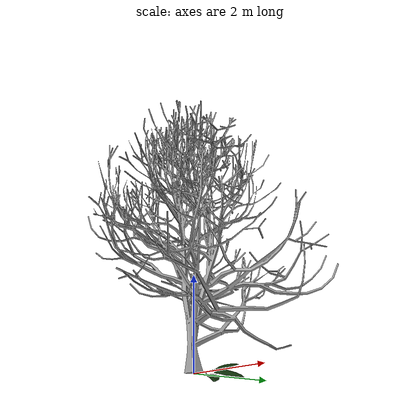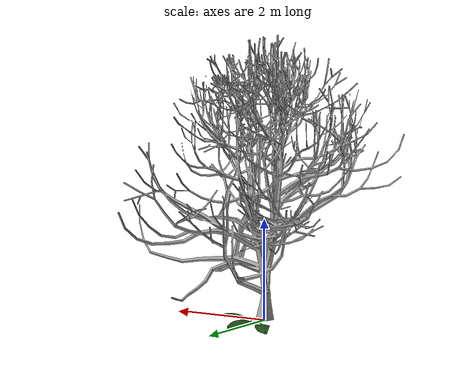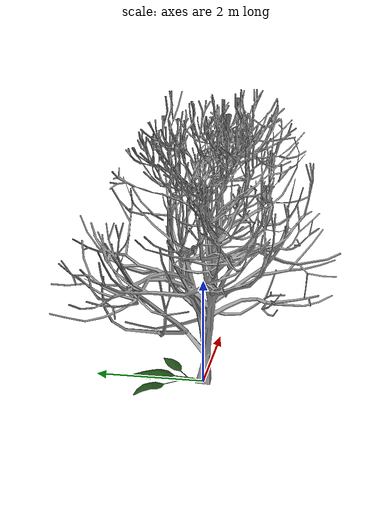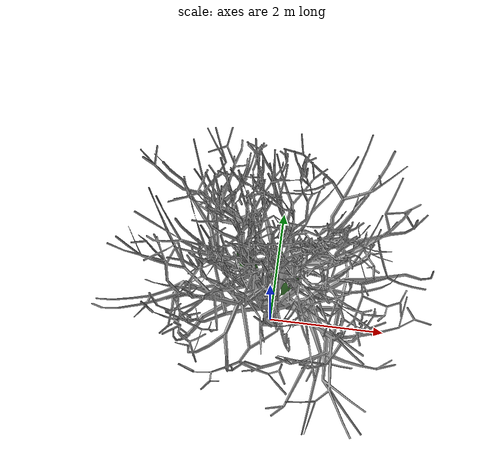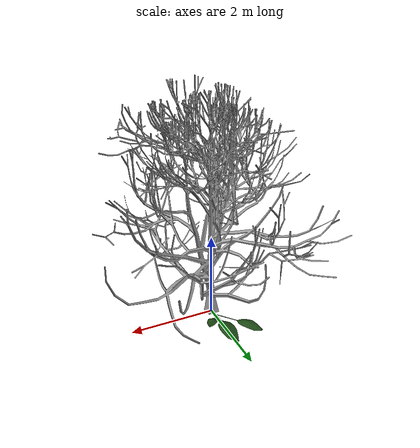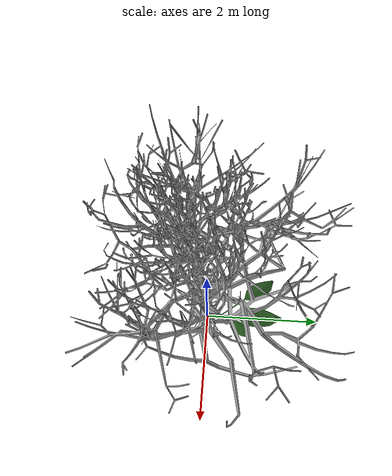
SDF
<?xml version="1.0" ?>
<sdf version="1.4">
  <model name="tree">
    <static>true</static>
    <link name="link">
      <pose>0 0 0 0 0 0</pose>
      <collision name="collision">
        <geometry>
          <mesh>
            <uri>model://hyq_tree/mesh/tree.dae</uri>
            <scale>0.5 0.5 0.5</scale>
          </mesh>
        </geometry>
      </collision>
      <visual name="visual">
        <geometry>
          <mesh>
            <uri>model://hyq_tree/mesh/tree.dae</uri>
            <scale>0.25 0.25 0.25</scale>
          </mesh>
        </geometry>
      </visual>
    </link>
  </model>
</sdf>
